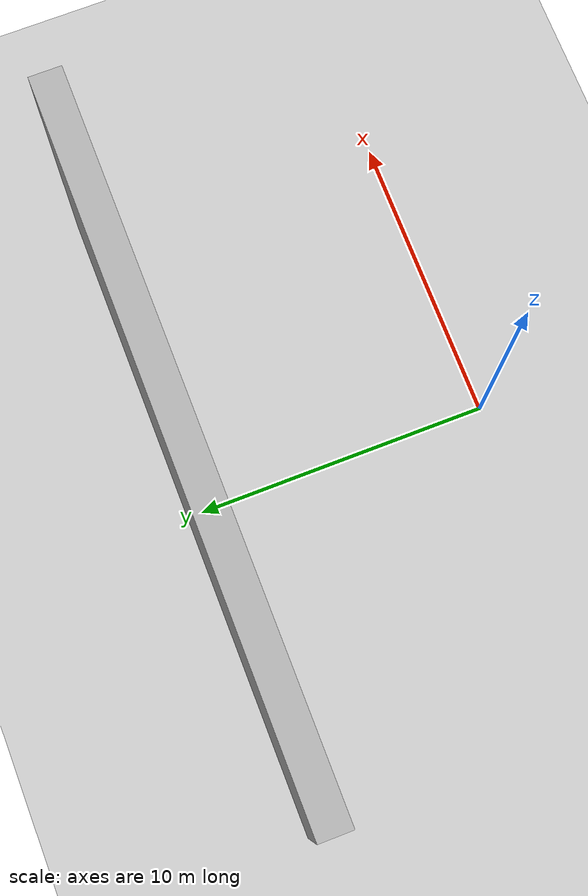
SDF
<?xml version="1.0"?>

<sdf version="1.6">
  <world name="default">

    <physics name="normal" type="ode">
      <real_time_update_rate>1000</real_time_update_rate>
      <max_step_size>0.001</max_step_size>
    </physics>

    <!-- A simple ground plane -->
    <include>
      <uri>model://ground_plane</uri>
    </include>

    <!-- A simple sun -->
    <include>
      <uri>model://sun</uri>
    </include>

    <!-- Define a box with the specified dimensions -->
    <model name="tall_box">
      <pose>0 10 5.5 0 0 0</pose> <!-- The center of the box is at 0,0,5.5 so the base is at 0,0,0 -->
      <static>true</static> <!-- This line makes the model static -->
      <link name="link">
        <visual name="visual">
          <geometry>
            <box>
              <size>22 1 11</size>
            </box>
          </geometry>
          <material>
            <ambient>0.7 0.7 0.7 1</ambient>
            <diffuse>0.7 0.7 0.7 1</diffuse>
            <specular>0.5 0.5 0.5 1</specular>
          </material>
        </visual>
        <collision name="collision">
          <geometry>
            <box>
              <size>22 1 11</size>
            </box>
          </geometry>
        </collision>
        <gravity>false</gravity> <!-- This line makes the link unaffected by gravity -->
      </link>
    </model>

  </world>
</sdf>
